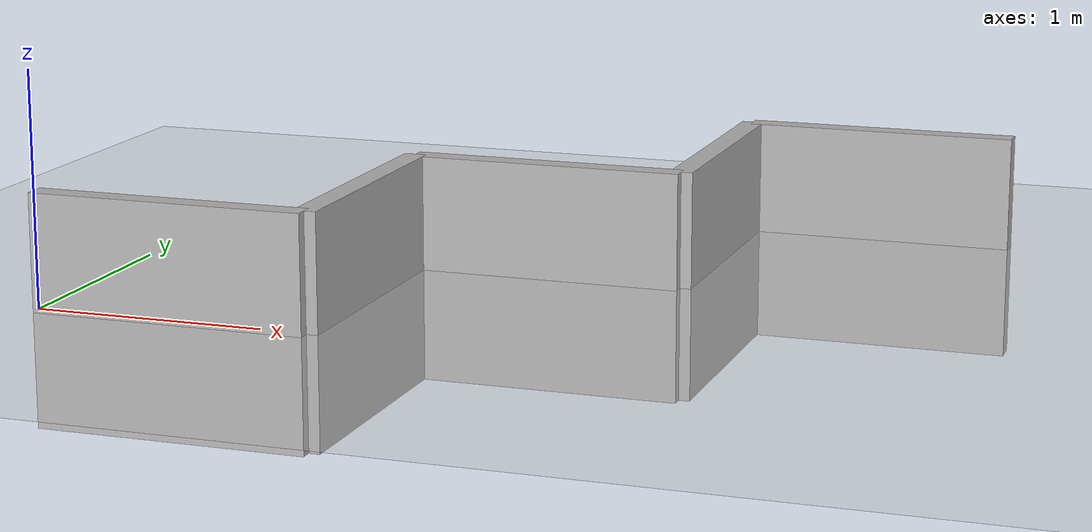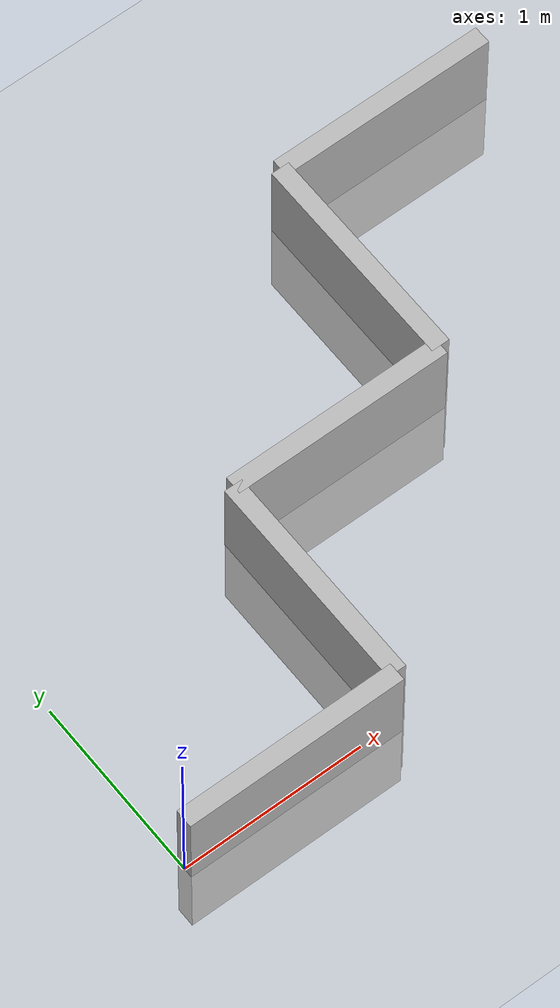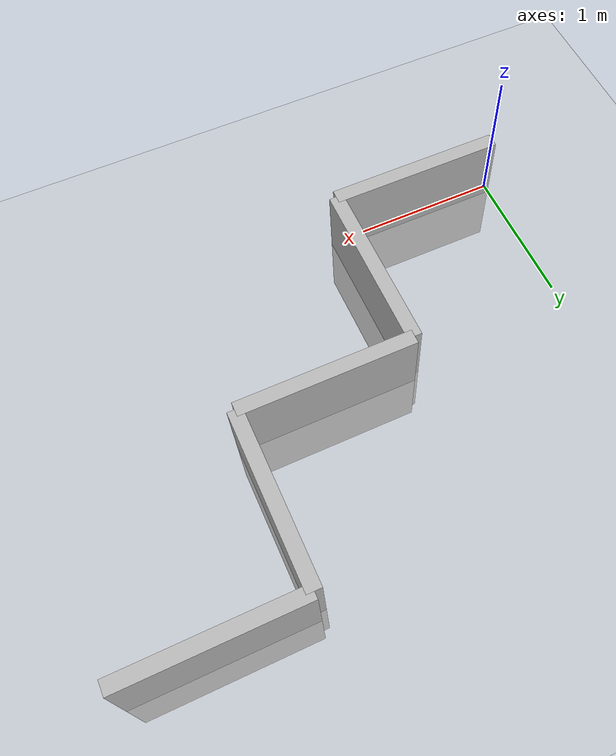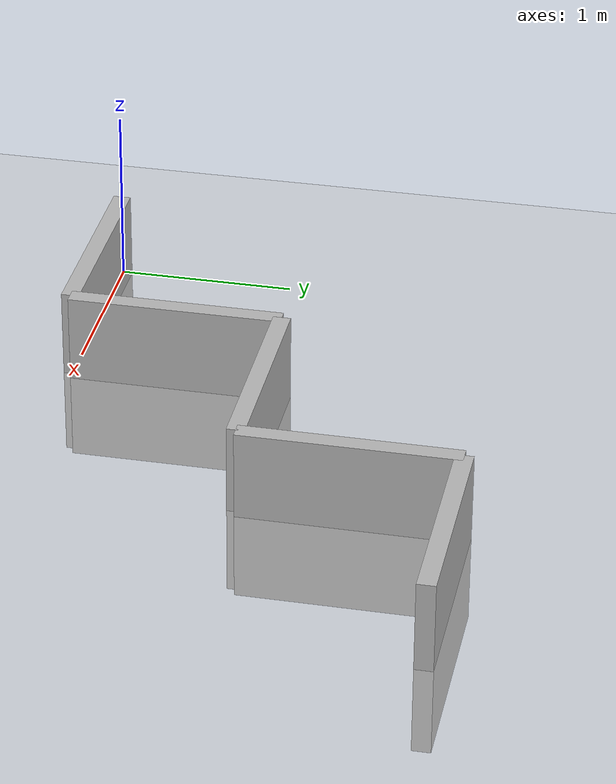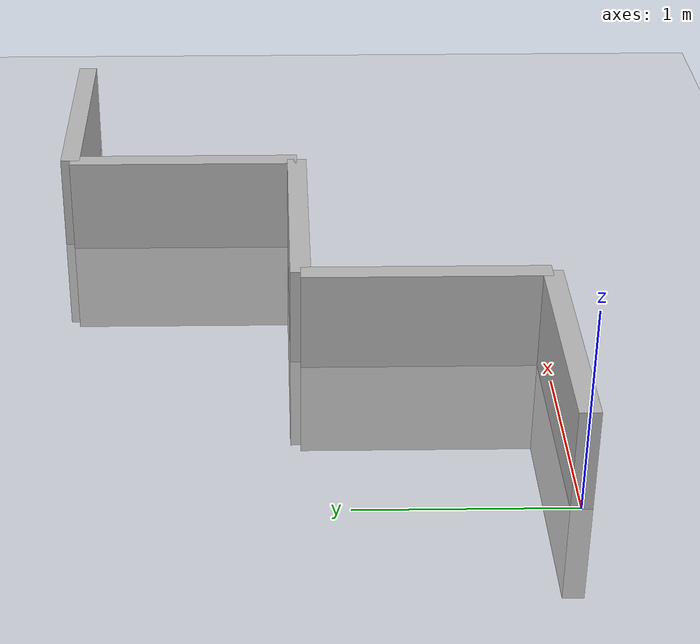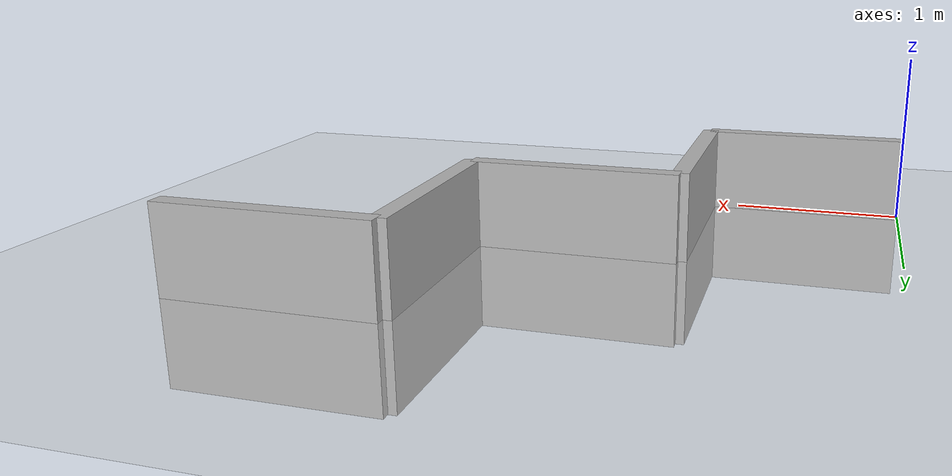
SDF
<?xml version="1.0" ?>
<sdf version="1.6">
  <world name="default">
    <include>
      <uri>model://ground_plane</uri>
    </include>
    <include>
      <uri>model://sun</uri>
    </include>

    <model name="wall_0">
      <static>true</static>
      <link name="link">
        <pose>0.6 0 0 0 0 0</pose>
        <collision name="collision">
          <geometry>
            <box>
              <size>1.2 0.1 1.0</size>
            </box>
          </geometry>
        </collision>
        <visual name="visual">
          <geometry>
            <box>
              <size>1.2 0.1 1.0</size>
            </box>
          </geometry>
        </visual>
      </link>
    </model>

    <model name="wall_1">
      <static>true</static>
      <link name="link">
        <pose>1.2 0.6 0 0 0 1.57</pose>
        <collision name="collision">
          <geometry>
            <box>
              <size>1.2 0.1 1.0</size>
            </box>
          </geometry>
        </collision>
        <visual name="visual">
          <geometry>
            <box>
              <size>1.2 0.1 1.0</size>
            </box>
          </geometry>
        </visual>
      </link>
    </model>

    <model name="wall_2">
      <static>true</static>
      <link name="link">
        <pose>1.7999999999999998 1.2 0 0 0 0</pose>
        <collision name="collision">
          <geometry>
            <box>
              <size>1.2 0.1 1.0</size>
            </box>
          </geometry>
        </collision>
        <visual name="visual">
          <geometry>
            <box>
              <size>1.2 0.1 1.0</size>
            </box>
          </geometry>
        </visual>
      </link>
    </model>

    <model name="wall_3">
      <static>true</static>
      <link name="link">
        <pose>2.4 1.7999999999999998 0 0 0 1.57</pose>
        <collision name="collision">
          <geometry>
            <box>
              <size>1.2 0.1 1.0</size>
            </box>
          </geometry>
        </collision>
        <visual name="visual">
          <geometry>
            <box>
              <size>1.2 0.1 1.0</size>
            </box>
          </geometry>
        </visual>
      </link>
    </model>

    <model name="wall_4">
      <static>true</static>
      <link name="link">
        <pose>3.0 2.4 0 0 0 0</pose>
        <collision name="collision">
          <geometry>
            <box>
              <size>1.2 0.1 1.0</size>
            </box>
          </geometry>
        </collision>
        <visual name="visual">
          <geometry>
            <box>
              <size>1.2 0.1 1.0</size>
            </box>
          </geometry>
        </visual>
      </link>
    </model>

  </world>
</sdf>
